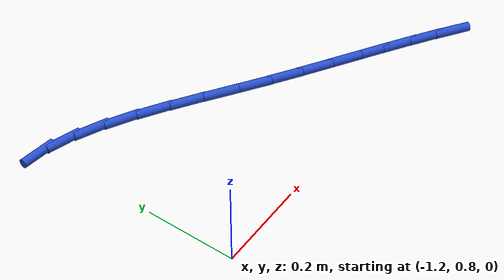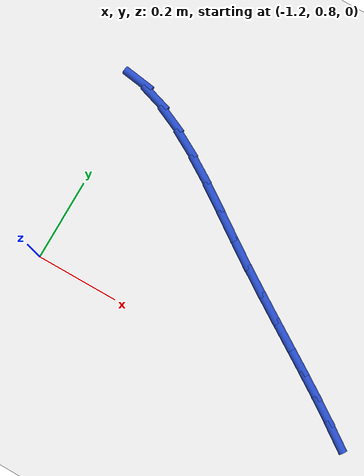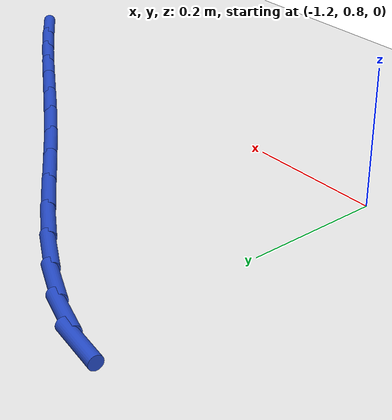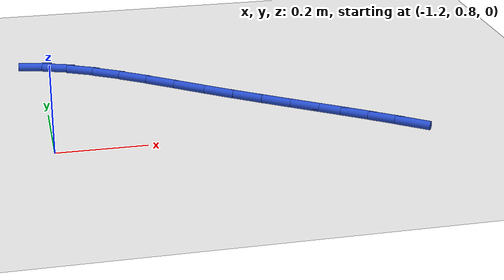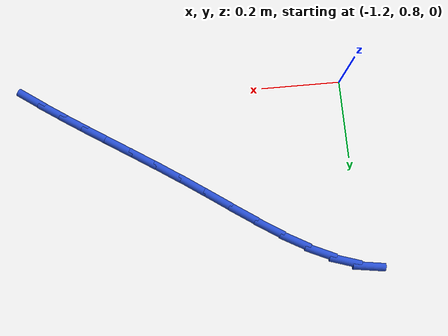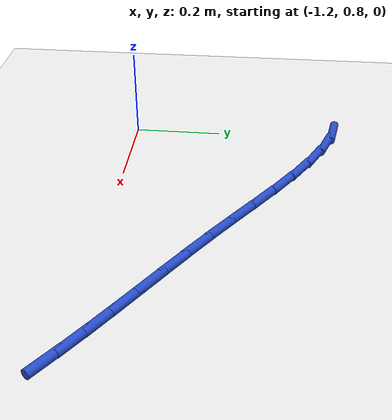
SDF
<sdf version="1.6">
 <world name="default">
  <model name="ground_plane">
   <static>1</static>
   <link name="link">
    <collision name="collision">
     <geometry><plane><normal>0 0 1</normal><size>100 100</size></plane></geometry>
     <surface><friction><ode><mu>100</mu><mu2>50</mu2></ode></friction></surface>
    </collision>
    <visual name="visual">
     <cast_shadows>0</cast_shadows>
     <geometry><plane><normal>0 0 1</normal><size>100 100</size></plane></geometry>
     <material>
      <script><uri>file://media/materials/scripts/gazebo.material</uri><name>Gazebo/WhiteGlow</name></script>
     </material>
    </visual>
   </link>
  </model>
  <model name="line">
   <link name="link_15">
    <pose>-0.40983494212509675 0.7793358242736642 0.01 0 1.57 -0.6121328727482384</pose>
    <collision name="collision">
     <geometry><cylinder><radius>0.01</radius><length>0.08</length></cylinder></geometry>
    </collision>
    <visual name="visual">
     <material>
      <script><name>Gazebo/Blue</name><uri>file://media/materials/scripts/gazebo.material</uri></script>
     </material>
     <geometry><cylinder><radius>0.01</radius><length>0.08</length></cylinder></geometry>
    </visual>
   </link>
   <link name="link_16">
    <pose>-0.4606209761854142 0.8149926155684509 0.01 0 1.57 -0.589986709975269</pose>
    <collision name="collision">
     <geometry><cylinder><radius>0.01</radius><length>0.08</length></cylinder></geometry>
    </collision>
    <visual name="visual">
     <material>
      <script><name>Gazebo/Blue</name><uri>file://media/materials/scripts/gazebo.material</uri></script>
     </material>
     <geometry><cylinder><radius>0.01</radius><length>0.08</length></cylinder></geometry>
    </visual>
   </link>
   <link name="link_17">
    <pose>-0.5133306003995571 0.8502836274963126 0.01 0 1.57 -0.5758083334593119</pose>
    <collision name="collision">
     <geometry><cylinder><radius>0.01</radius><length>0.08</length></cylinder></geometry>
    </collision>
    <visual name="visual">
     <material>
      <script><name>Gazebo/Blue</name><uri>file://media/materials/scripts/gazebo.material</uri></script>
     </material>
     <geometry><cylinder><radius>0.01</radius><length>0.08</length></cylinder></geometry>
    </visual>
   </link>
   <link name="link_18">
    <pose>-0.5677657099582089 0.8856225685674892 0.01 0 1.57 -0.5691177557612092</pose>
    <collision name="collision">
     <geometry><cylinder><radius>0.01</radius><length>0.08</length></cylinder></geometry>
    </collision>
    <visual name="visual">
     <material>
      <script><name>Gazebo/Blue</name><uri>file://media/materials/scripts/gazebo.material</uri></script>
     </material>
     <geometry><cylinder><radius>0.01</radius><length>0.08</length></cylinder></geometry>
    </visual>
   </link>
   <link name="link_19">
    <pose>-0.6237282000520522 0.921423147292221 0.01 0 1.57 -0.5694270379029286</pose>
    <collision name="collision">
     <geometry><cylinder><radius>0.01</radius><length>0.08</length></cylinder></geometry>
    </collision>
    <visual name="visual">
     <material>
      <script><name>Gazebo/Blue</name><uri>file://media/materials/scripts/gazebo.material</uri></script>
     </material>
     <geometry><cylinder><radius>0.01</radius><length>0.08</length></cylinder></geometry>
    </visual>
   </link>
   <link name="link_20">
    <pose>-0.6810199658717698 0.9580990721807467 0.01 0 1.57 -0.576255734487135</pose>
    <collision name="collision">
     <geometry><cylinder><radius>0.01</radius><length>0.08</length></cylinder></geometry>
    </collision>
    <visual name="visual">
     <material>
      <script><name>Gazebo/Blue</name><uri>file://media/materials/scripts/gazebo.material</uri></script>
     </material>
     <geometry><cylinder><radius>0.01</radius><length>0.08</length></cylinder></geometry>
    </visual>
   </link>
   <link name="link_21">
    <pose>-0.7394429026080453 0.996064051743307 0.01 0 1.57 -0.5891339884587029</pose>
    <collision name="collision">
     <geometry><cylinder><radius>0.01</radius><length>0.08</length></cylinder></geometry>
    </collision>
    <visual name="visual">
     <material>
      <script><name>Gazebo/Blue</name><uri>file://media/materials/scripts/gazebo.material</uri></script>
     </material>
     <geometry><cylinder><radius>0.01</radius><length>0.08</length></cylinder></geometry>
    </visual>
   </link>
   <link name="link_22">
    <pose>-0.798798905451561 1.035731794490141 0.01 0 1.57 -0.6046062816077945</pose>
    <collision name="collision">
     <geometry><cylinder><radius>0.01</radius><length>0.08</length></cylinder></geometry>
    </collision>
    <visual name="visual">
     <material>
      <script><name>Gazebo/Blue</name><uri>file://media/materials/scripts/gazebo.material</uri></script>
     </material>
     <geometry><cylinder><radius>0.01</radius><length>0.08</length></cylinder></geometry>
    </visual>
   </link>
   <link name="link_23">
    <pose>-0.8588648860791563 1.0772326090994873 0.01 0 1.57 -0.6076904130209929</pose>
    <collision name="collision">
     <geometry><cylinder><radius>0.01</radius><length>0.08</length></cylinder></geometry>
    </collision>
    <visual name="visual">
     <material>
      <script><name>Gazebo/Blue</name><uri>file://media/materials/scripts/gazebo.material</uri></script>
     </material>
     <geometry><cylinder><radius>0.01</radius><length>0.08</length></cylinder></geometry>
    </visual>
   </link>
   <link name="link_24">
    <pose>-0.919290926082757 1.1192581105180803 0.01 0 1.57 -0.5939663866913393</pose>
    <collision name="collision">
     <geometry><cylinder><radius>0.01</radius><length>0.08</length></cylinder></geometry>
    </collision>
    <visual name="visual">
     <material>
      <script><name>Gazebo/Blue</name><uri>file://media/materials/scripts/gazebo.material</uri></script>
     </material>
     <geometry><cylinder><radius>0.01</radius><length>0.08</length></cylinder></geometry>
    </visual>
   </link>
   <link name="link_25">
    <pose>-0.9796869583386902 1.1600444877935217 0.01 0 1.57 -0.5621678727964611</pose>
    <collision name="collision">
     <geometry><cylinder><radius>0.01</radius><length>0.08</length></cylinder></geometry>
    </collision>
    <visual name="visual">
     <material>
      <script><name>Gazebo/Blue</name><uri>file://media/materials/scripts/gazebo.material</uri></script>
     </material>
     <geometry><cylinder><radius>0.01</radius><length>0.08</length></cylinder></geometry>
    </visual>
   </link>
   <link name="link_26">
    <pose>-1.0396628998519346 1.197827749937194 0.01 0 1.57 -0.5089858543235415</pose>
    <collision name="collision">
     <geometry><cylinder><radius>0.01</radius><length>0.08</length></cylinder></geometry>
    </collision>
    <visual name="visual">
     <material>
      <script><name>Gazebo/Blue</name><uri>file://media/materials/scripts/gazebo.material</uri></script>
     </material>
     <geometry><cylinder><radius>0.01</radius><length>0.08</length></cylinder></geometry>
    </visual>
   </link>
   <link name="link_27">
    <pose>-1.0988286676274692 1.2308439059604805 0.01 0 1.57 -0.4285859359724198</pose>
    <collision name="collision">
     <geometry><cylinder><radius>0.01</radius><length>0.08</length></cylinder></geometry>
    </collision>
    <visual name="visual">
     <material>
      <script><name>Gazebo/Blue</name><uri>file://media/materials/scripts/gazebo.material</uri></script>
     </material>
     <geometry><cylinder><radius>0.01</radius><length>0.08</length></cylinder></geometry>
    </visual>
   </link>
   <link name="link_28">
    <pose>-1.1567941786702736 1.2573289648747652 0.01 0 1.57 -0.31211332137001785</pose>
    <collision name="collision">
     <geometry><cylinder><radius>0.01</radius><length>0.08</length></cylinder></geometry>
    </collision>
    <visual name="visual">
     <material>
      <script><name>Gazebo/Blue</name><uri>file://media/materials/scripts/gazebo.material</uri></script>
     </material>
     <geometry><cylinder><radius>0.01</radius><length>0.08</length></cylinder></geometry>
    </visual>
   </link>
   <link name="link_29">
    <pose>-1.2131693499853264 1.2755189356914312 0.01 0 1.57 -0.14838071681765133</pose>
    <collision name="collision">
     <geometry><cylinder><radius>0.01</radius><length>0.08</length></cylinder></geometry>
    </collision>
    <visual name="visual">
     <material>
      <script><name>Gazebo/Blue</name><uri>file://media/materials/scripts/gazebo.material</uri></script>
     </material>
     <geometry><cylinder><radius>0.01</radius><length>0.08</length></cylinder></geometry>
    </visual>
   </link>
  </model>
 </world>
</sdf>
